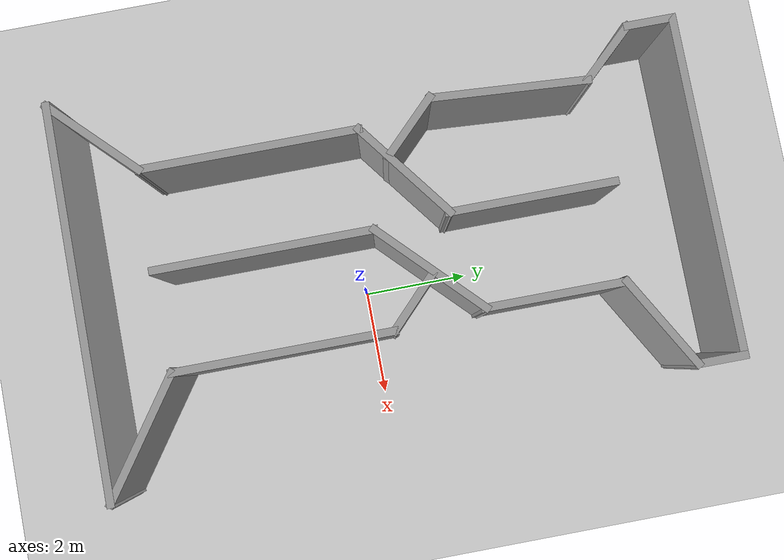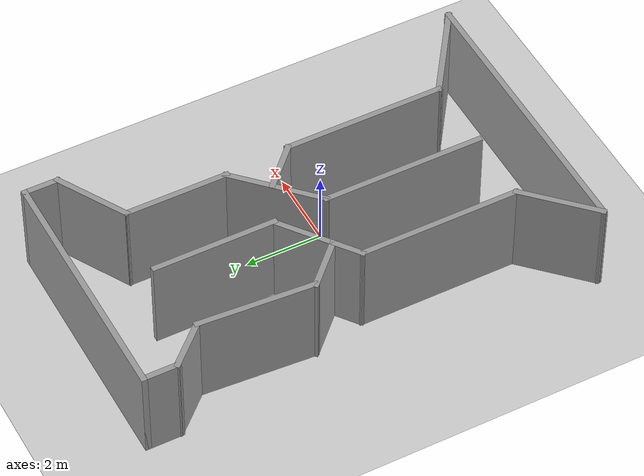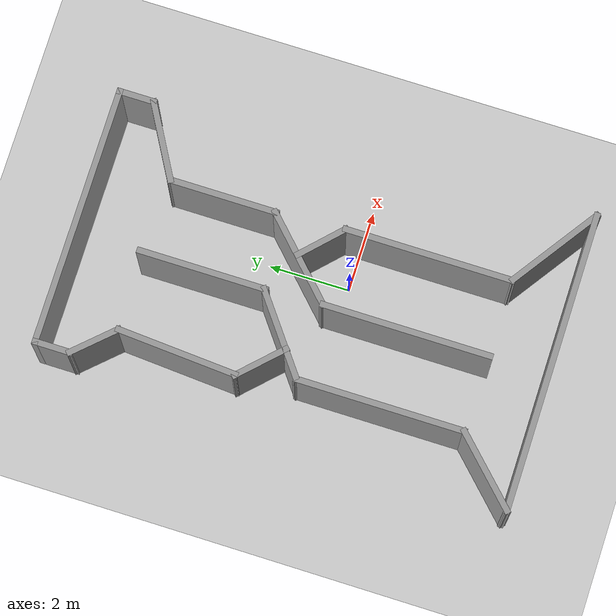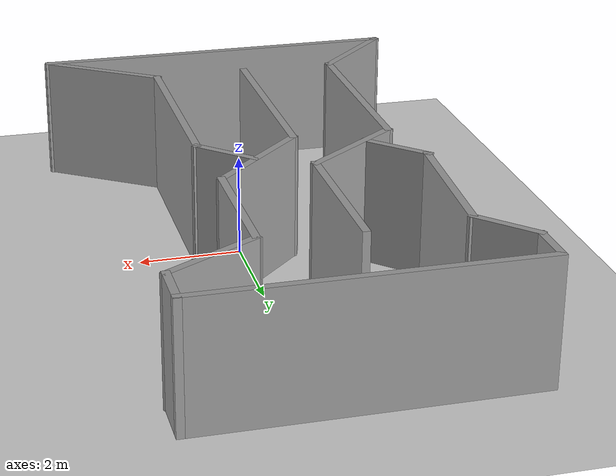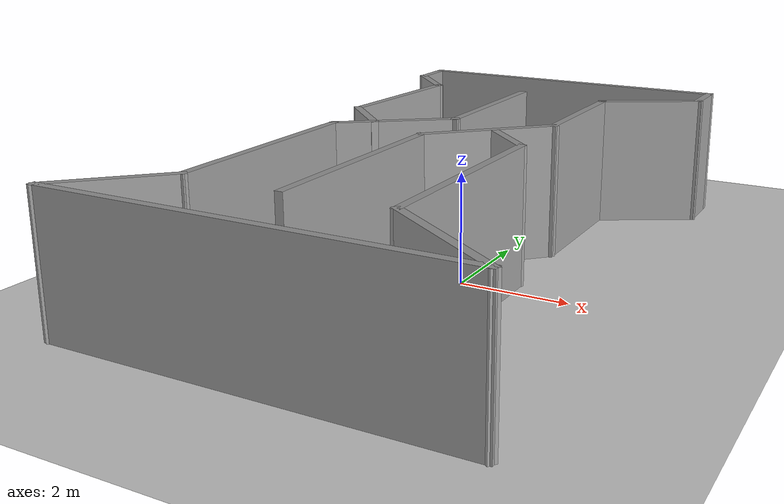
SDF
<sdf version="1.7">
 <world name="default">
  <light name="sun" type="directional">
   <pose>0 0 10 0 -0 0</pose>
   <diffuse>0.8 0.8 0.8 1</diffuse>
   <specular>0.2 0.2 0.2 1</specular>
   <attenuation>
    <range>1000</range>
    <constant>0.9</constant>
    <linear>0.01</linear>
    <quadratic>0.001</quadratic>
   </attenuation>
   <direction>-0.5 0.1 -0.9</direction>
   <spot><inner_angle>0</inner_angle><outer_angle>0</outer_angle><falloff>0</falloff></spot>
  </light>
  <model name="ground_plane">
   <static>1</static>
   <link name="link">
    <collision name="collision">
     <geometry><plane><normal>0 0 1</normal><size>100 100</size></plane></geometry>
     <surface>
      <contact><collide_bitmask>65535</collide_bitmask></contact>
      <friction><ode><mu>100</mu><mu2>50</mu2></ode></friction>
     </surface>
    </collision>
    <visual name="visual">
     <cast_shadows>0</cast_shadows>
     <geometry><plane><normal>0 0 1</normal><size>100 100</size></plane></geometry>
     <material>
      <script><uri>file://media/materials/scripts/gazebo.material</uri><name>Gazebo/Grey</name></script>
     </material>
    </visual>
   </link>
  </model>
  <gravity>0 0 -9.8</gravity>
  <magnetic_field>6e-06 2.3e-05 -4.2e-05</magnetic_field>
  <atmosphere type="adiabatic"/>
  <physics type="ode">
   <max_step_size>0.001</max_step_size>
   <real_time_factor>1</real_time_factor>
   <real_time_update_rate>1000</real_time_update_rate>
  </physics>
  <scene><ambient>0.4 0.4 0.4 1</ambient><background>0.7 0.7 0.7 1</background><shadows>1</shadows></scene>
  <audio><device>default</device></audio>
  <spherical_coordinates>
   <surface_model>EARTH_WGS84</surface_model>
   <latitude_deg>0</latitude_deg>
   <longitude_deg>0</longitude_deg>
   <elevation>0</elevation>
   <heading_deg>0</heading_deg>
  </spherical_coordinates>
  <model name="my_custom_world.world">
   <pose>-0.672651 0.662983 0 0 -0 0</pose>
   <link name="Wall_14">
    <collision name="Wall_14_Collision">
     <geometry><box><size>4.25 0.15 2.5</size></box></geometry>
     <pose>0 0 1.25 0 -0 0</pose>
    </collision>
    <visual name="Wall_14_Visual">
     <pose>0 0 1.25 0 -0 0</pose>
     <geometry><box><size>4.25 0.15 2.5</size></box></geometry>
     <material>
      <script><uri>file://media/materials/scripts/gazebo.material</uri><name>Gazebo/Grey</name></script>
      <ambient>1 1 1 1</ambient>
     </material>
     <meta><layer>0</layer></meta>
    </visual>
    <pose>1.58022 -2.32154 0 0 -0 1.5708</pose>
   </link>
   <link name="Wall_16">
    <collision name="Wall_16_Collision">
     <geometry><box><size>4.25 0.15 2.5</size></box></geometry>
     <pose>0 0 1.25 0 -0 0</pose>
    </collision>
    <visual name="Wall_16_Visual">
     <pose>0 0 1.25 0 -0 0</pose>
     <geometry><box><size>4.25 0.15 2.5</size></box></geometry>
     <material>
      <script><uri>file://media/materials/scripts/gazebo.material</uri><name>Gazebo/Grey</name></script>
      <ambient>1 1 1 1</ambient>
     </material>
     <meta><layer>0</layer></meta>
    </visual>
    <pose>-0.307573 -2.35142 0 0 -0 -1.5708</pose>
   </link>
   <link name="Wall_18">
    <collision name="Wall_18_Collision">
     <geometry><box><size>4.25 0.15 2.5</size></box></geometry>
     <pose>0 0 1.25 0 -0 0</pose>
    </collision>
    <visual name="Wall_18_Visual">
     <pose>0 0 1.25 0 -0 0</pose>
     <geometry><box><size>4.25 0.15 2.5</size></box></geometry>
     <material>
      <script><uri>file://media/materials/scripts/gazebo.material</uri><name>Gazebo/Grey</name></script>
      <ambient>1 1 1 1</ambient>
     </material>
     <meta><layer>0</layer></meta>
    </visual>
    <pose>-2.18924 -2.29429 0 0 -0 -1.5708</pose>
   </link>
   <link name="Wall_20">
    <collision name="Wall_20_Collision">
     <geometry><box><size>2.43393 0.15 2.5</size></box></geometry>
     <pose>0 0 1.25 0 -0 0</pose>
    </collision>
    <visual name="Wall_20_Visual">
     <pose>0 0 1.25 0 -0 0</pose>
     <geometry><box><size>2.43393 0.15 2.5</size></box></geometry>
     <material>
      <script><uri>file://media/materials/scripts/gazebo.material</uri><name>Gazebo/Grey</name></script>
      <ambient>1 1 1 1</ambient>
     </material>
     <meta><layer>0</layer></meta>
    </visual>
    <pose>-1.27788 0.443825 0 0 -0 -2.49488</pose>
   </link>
   <link name="Wall_22">
    <collision name="Wall_22_Collision">
     <geometry><box><size>2.25 0.15 2.5</size></box></geometry>
     <pose>0 0 1.25 0 -0 0</pose>
    </collision>
    <visual name="Wall_22_Visual">
     <pose>0 0 1.25 0 -0 0</pose>
     <geometry><box><size>2.25 0.15 2.5</size></box></geometry>
     <material>
      <script><uri>file://media/materials/scripts/gazebo.material</uri><name>Gazebo/Grey</name></script>
      <ambient>1 1 1 1</ambient>
     </material>
     <meta><layer>0</layer></meta>
    </visual>
    <pose>-2.9317 -5.08675 0 0 -0 -2.35619</pose>
   </link>
   <link name="Wall_23">
    <collision name="Wall_23_Collision">
     <geometry><box><size>7.5 0.15 2.5</size></box></geometry>
     <pose>0 0 1.25 0 -0 0</pose>
    </collision>
    <visual name="Wall_23_Visual">
     <pose>0 0 1.25 0 -0 0</pose>
     <geometry><box><size>7.5 0.15 2.5</size></box></geometry>
     <material>
      <script><uri>file://media/materials/scripts/gazebo.material</uri><name>Gazebo/Grey</name></script>
      <ambient>1 1 1 1</ambient>
     </material>
     <meta><layer>0</layer></meta>
    </visual>
    <pose>0.000835 -5.82921 0 0 -0 0</pose>
   </link>
   <link name="Wall_24">
    <collision name="Wall_24_Collision">
     <geometry><box><size>2.70273 0.15 2.5</size></box></geometry>
     <pose>0 0 1.25 0 -0 0</pose>
    </collision>
    <visual name="Wall_24_Visual">
     <pose>0 0 1.25 0 -0 0</pose>
     <geometry><box><size>2.70273 0.15 2.5</size></box></geometry>
     <material>
      <script><uri>file://media/materials/scripts/gazebo.material</uri><name>Gazebo/Grey</name></script>
      <ambient>1 1 1 1</ambient>
     </material>
     <meta><layer>0</layer></meta>
    </visual>
    <pose>2.62803 -5.10037 0 0 -0 2.53384</pose>
   </link>
   <link name="Wall_26">
    <collision name="Wall_26_Collision">
     <geometry><box><size>3.25 0.15 2.5</size></box></geometry>
     <pose>0 0 1.25 0 -0 0</pose>
    </collision>
    <visual name="Wall_26_Visual">
     <pose>0 0 1.25 0 -0 0</pose>
     <geometry><box><size>3.25 0.15 2.5</size></box></geometry>
     <material>
      <script><uri>file://media/materials/scripts/gazebo.material</uri><name>Gazebo/Grey</name></script>
      <ambient>1 1 1 1</ambient>
     </material>
     <meta><layer>0</layer></meta>
    </visual>
    <pose>-0.366511 2.65135 0 0 -0 1.5708</pose>
   </link>
   <link name="Wall_29">
    <collision name="Wall_29_Collision">
     <geometry><box><size>3.08735 0.15 2.5</size></box></geometry>
     <pose>0 0 1.25 0 -0 0</pose>
    </collision>
    <visual name="Wall_29_Visual">
     <pose>0 0 1.25 0 -0 0</pose>
     <geometry><box><size>3.08735 0.15 2.5</size></box></geometry>
     <material>
      <script><uri>file://media/materials/scripts/gazebo.material</uri><name>Gazebo/Grey</name></script>
      <ambient>1 1 1 1</ambient>
     </material>
     <meta><layer>0</layer></meta>
    </visual>
    <pose>-2.41572 2.62337 0 0 -0 1.50227</pose>
   </link>
   <link name="Wall_31">
    <collision name="Wall_31_Collision">
     <geometry><box><size>1.5 0.15 2.5</size></box></geometry>
     <pose>0 0 1.25 0 -0 0</pose>
    </collision>
    <visual name="Wall_31_Visual">
     <pose>0 0 1.25 0 -0 0</pose>
     <geometry><box><size>1.5 0.15 2.5</size></box></geometry>
     <material>
      <script><uri>file://media/materials/scripts/gazebo.material</uri><name>Gazebo/Grey</name></script>
      <ambient>1 1 1 1</ambient>
     </material>
     <meta><layer>0</layer></meta>
    </visual>
    <pose>-2.0591 0.680841 0 0 -0 -0.785398</pose>
   </link>
   <link name="Wall_33">
    <collision name="Wall_33_Collision">
     <geometry><box><size>2.64239 0.15 2.5</size></box></geometry>
     <pose>0 0 1.25 0 -0 0</pose>
    </collision>
    <visual name="Wall_33_Visual">
     <pose>0 0 1.25 0 -0 0</pose>
     <geometry><box><size>2.64239 0.15 2.5</size></box></geometry>
     <material>
      <script><uri>file://media/materials/scripts/gazebo.material</uri><name>Gazebo/Grey</name></script>
      <ambient>1 1 1 1</ambient>
     </material>
     <meta><layer>0</layer></meta>
    </visual>
    <pose>0.583618 0.569656 0 0 -0 0.773985</pose>
   </link>
   <link name="Wall_34">
    <collision name="Wall_34_Collision">
     <geometry><box><size>2.75 0.15 2.5</size></box></geometry>
     <pose>0 0 1.25 0 -0 0</pose>
    </collision>
    <visual name="Wall_34_Visual">
     <pose>0 0 1.25 0 -0 0</pose>
     <geometry><box><size>2.75 0.15 2.5</size></box></geometry>
     <material>
      <script><uri>file://media/materials/scripts/gazebo.material</uri><name>Gazebo/Grey</name></script>
      <ambient>1 1 1 1</ambient>
     </material>
     <meta><layer>0</layer></meta>
    </visual>
    <pose>1.47481 2.72062 0 0 -0 1.5708</pose>
   </link>
   <link name="Wall_35">
    <collision name="Wall_35_Collision">
     <geometry><box><size>2.10528 0.15 2.5</size></box></geometry>
     <pose>0 0 1.25 0 -0 0</pose>
    </collision>
    <visual name="Wall_35_Visual">
     <pose>0 0 1.25 0 -0 0</pose>
     <geometry><box><size>2.10528 0.15 2.5</size></box></geometry>
     <material>
      <script><uri>file://media/materials/scripts/gazebo.material</uri><name>Gazebo/Grey</name></script>
      <ambient>1 1 1 1</ambient>
     </material>
     <meta><layer>0</layer></meta>
    </visual>
    <pose>2.3238 4.52551 0 0 -0 0.518825</pose>
   </link>
   <link name="Wall_36">
    <collision name="Wall_36_Collision">
     <geometry><box><size>1 0.15 2.5</size></box></geometry>
     <pose>0 0 1.25 0 -0 0</pose>
    </collision>
    <visual name="Wall_36_Visual">
     <pose>0 0 1.25 0 -0 0</pose>
     <geometry><box><size>1 0.15 2.5</size></box></geometry>
     <material>
      <script><uri>file://media/materials/scripts/gazebo.material</uri><name>Gazebo/Grey</name></script>
      <ambient>1 1 1 1</ambient>
     </material>
     <meta><layer>0</layer></meta>
    </visual>
    <pose>3.17278 5.43528 0 0 -0 1.5708</pose>
   </link>
   <link name="Wall_37">
    <collision name="Wall_37_Collision">
     <geometry><box><size>6.5 0.15 2.5</size></box></geometry>
     <pose>0 0 1.25 0 -0 0</pose>
    </collision>
    <visual name="Wall_37_Visual">
     <pose>0 0 1.25 0 -0 0</pose>
     <geometry><box><size>6.5 0.15 2.5</size></box></geometry>
     <material>
      <script><uri>file://media/materials/scripts/gazebo.material</uri><name>Gazebo/Grey</name></script>
      <ambient>1 1 1 1</ambient>
     </material>
     <meta><layer>0</layer></meta>
    </visual>
    <pose>-0.002219 5.86028 0 0 -0 3.14159</pose>
   </link>
   <link name="Wall_38">
    <collision name="Wall_38_Collision">
     <geometry><box><size>1 0.15 2.5</size></box></geometry>
     <pose>0 0 1.25 0 -0 0</pose>
    </collision>
    <visual name="Wall_38_Visual">
     <pose>0 0 1.25 0 -0 0</pose>
     <geometry><box><size>1 0.15 2.5</size></box></geometry>
     <material>
      <script><uri>file://media/materials/scripts/gazebo.material</uri><name>Gazebo/Grey</name></script>
      <ambient>1 1 1 1</ambient>
     </material>
     <meta><layer>0</layer></meta>
    </visual>
    <pose>-3.17722 5.43528 0 0 -0 -1.5708</pose>
   </link>
   <link name="Wall_39">
    <collision name="Wall_39_Collision">
     <geometry><box><size>1.41201 0.15 2.5</size></box></geometry>
     <pose>0 0 1.25 0 -0 0</pose>
    </collision>
    <visual name="Wall_39_Visual">
     <pose>0 0 1.25 0 -0 0</pose>
     <geometry><box><size>1.41201 0.15 2.5</size></box></geometry>
     <material>
      <script><uri>file://media/materials/scripts/gazebo.material</uri><name>Gazebo/Grey</name></script>
      <ambient>1 1 1 1</ambient>
     </material>
     <meta><layer>0</layer></meta>
    </visual>
    <pose>-2.74619 4.54944 0 0 -0 -0.818809</pose>
   </link>
   <link name="Wall_41">
    <collision name="Wall_41_Collision">
     <geometry><box><size>1.44166 0.15 2.5</size></box></geometry>
     <pose>0 0 1.25 0 -0 0</pose>
    </collision>
    <visual name="Wall_41_Visual">
     <pose>0 0 1.25 0 -0 0</pose>
     <geometry><box><size>1.44166 0.15 2.5</size></box></geometry>
     <material>
      <script><uri>file://media/materials/scripts/gazebo.material</uri><name>Gazebo/Grey</name></script>
      <ambient>1 1 1 1</ambient>
     </material>
     <meta><layer>0</layer></meta>
    </visual>
    <pose>1.11616 0.177626 0 0 -0 -0.769089</pose>
   </link>
   <static>1</static>
  </model>
 </world>
</sdf>
